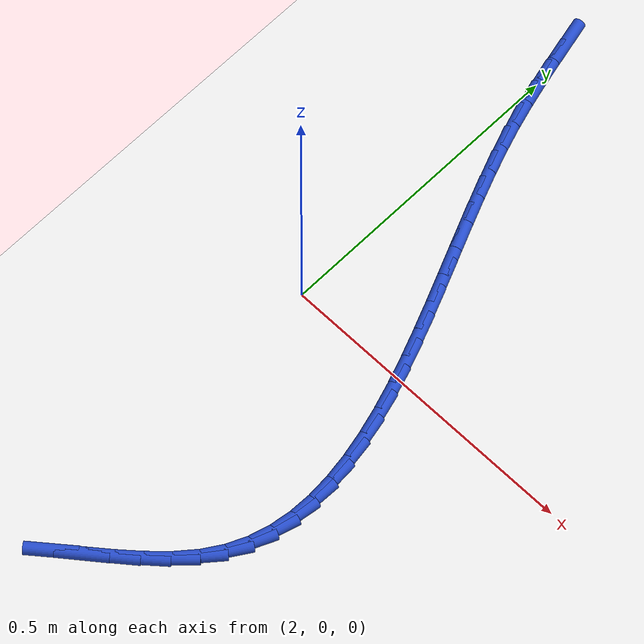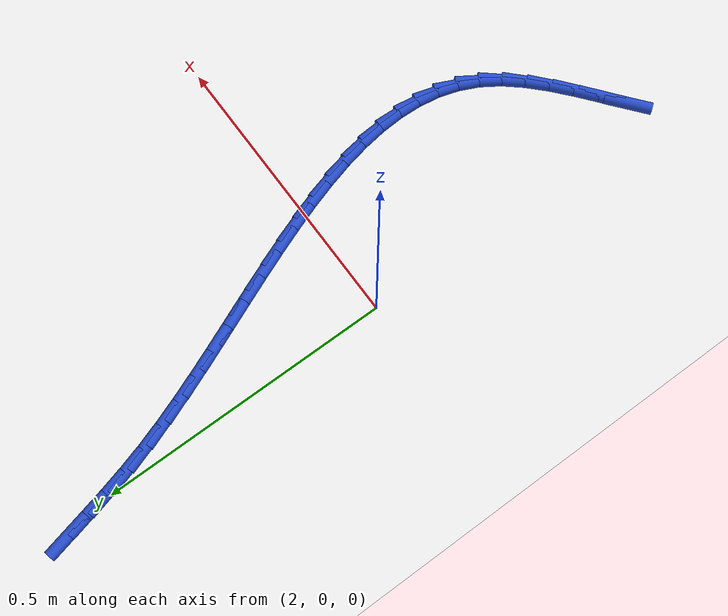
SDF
<sdf version="1.6">
 <world name="default">
  <model name="ground_plane">
   <static>1</static>
   <link name="link">
    <collision name="collision">
     <geometry><plane><normal>0 0 1</normal><size>100 100</size></plane></geometry>
     <surface><friction><ode><mu>100</mu><mu2>50</mu2></ode></friction></surface>
    </collision>
    <visual name="visual">
     <cast_shadows>0</cast_shadows>
     <geometry><plane><normal>0 0 1</normal><size>100 100</size></plane></geometry>
     <material>
      <script><uri>file://media/materials/scripts/gazebo.material</uri><name>Gazebo/WhiteGlow</name></script>
     </material>
    </visual>
   </link>
  </model>
  <model name="line">
   <link name="link_75">
    <pose>1.9848173739300197 0.5832726212072354 0.01 0 1.57 -1.339966599983334</pose>
    <collision name="collision">
     <geometry><cylinder><radius>0.01</radius><length>0.08</length></cylinder></geometry>
    </collision>
    <visual name="visual">
     <material>
      <script><name>Gazebo/Blue</name><uri>file://media/materials/scripts/gazebo.material</uri></script>
     </material>
     <geometry><cylinder><radius>0.01</radius><length>0.08</length></cylinder></geometry>
    </visual>
   </link>
   <link name="link_76">
    <pose>1.9943560275302878 0.5426858437855591 0.01 0 1.57 -1.330903270635454</pose>
    <collision name="collision">
     <geometry><cylinder><radius>0.01</radius><length>0.08</length></cylinder></geometry>
    </collision>
    <visual name="visual">
     <material>
      <script><name>Gazebo/Blue</name><uri>file://media/materials/scripts/gazebo.material</uri></script>
     </material>
     <geometry><cylinder><radius>0.01</radius><length>0.08</length></cylinder></geometry>
    </visual>
   </link>
   <link name="link_77">
    <pose>2.00435633278077 0.5018020825898984 0.01 0 1.57 -1.3100981899154562</pose>
    <collision name="collision">
     <geometry><cylinder><radius>0.01</radius><length>0.08</length></cylinder></geometry>
    </collision>
    <visual name="visual">
     <material>
      <script><name>Gazebo/Blue</name><uri>file://media/materials/scripts/gazebo.material</uri></script>
     </material>
     <geometry><cylinder><radius>0.01</radius><length>0.08</length></cylinder></geometry>
    </visual>
   </link>
   <link name="link_78">
    <pose>2.0153843852656297 0.46046278429122733 0.01 0 1.57 -1.2785554112859177</pose>
    <collision name="collision">
     <geometry><cylinder><radius>0.01</radius><length>0.08</length></cylinder></geometry>
    </collision>
    <visual name="visual">
     <material>
      <script><name>Gazebo/Blue</name><uri>file://media/materials/scripts/gazebo.material</uri></script>
     </material>
     <geometry><cylinder><radius>0.01</radius><length>0.08</length></cylinder></geometry>
    </visual>
   </link>
   <link name="link_79">
    <pose>2.028006266241324 0.41850939991579034 0.01 0 1.57 -1.241151438164576</pose>
    <collision name="collision">
     <geometry><cylinder><radius>0.01</radius><length>0.08</length></cylinder></geometry>
    </collision>
    <visual name="visual">
     <material>
      <script><name>Gazebo/Blue</name><uri>file://media/materials/scripts/gazebo.material</uri></script>
     </material>
     <geometry><cylinder><radius>0.01</radius><length>0.08</length></cylinder></geometry>
    </visual>
   </link>
   <link name="link_80">
    <pose>2.0426050024576887 0.3758390245719014 0.01 0 1.57 -1.2103614339069373</pose>
    <collision name="collision">
     <geometry><cylinder><radius>0.01</radius><length>0.08</length></cylinder></geometry>
    </collision>
    <visual name="visual">
     <material>
      <script><name>Gazebo/Blue</name><uri>file://media/materials/scripts/gazebo.material</uri></script>
     </material>
     <geometry><cylinder><radius>0.01</radius><length>0.08</length></cylinder></geometry>
    </visual>
   </link>
   <link name="link_81">
    <pose>2.058923075237174 0.3325434634735591 0.01 0 1.57 -1.1878251891187217</pose>
    <collision name="collision">
     <geometry><cylinder><radius>0.01</radius><length>0.08</length></cylinder></geometry>
    </collision>
    <visual name="visual">
     <material>
      <script><name>Gazebo/Blue</name><uri>file://media/materials/scripts/gazebo.material</uri></script>
     </material>
     <geometry><cylinder><radius>0.01</radius><length>0.08</length></cylinder></geometry>
    </visual>
   </link>
   <link name="link_82">
    <pose>2.076562940596465 0.2887570860947172 0.01 0 1.57 -1.172703800976146</pose>
    <collision name="collision">
     <geometry><cylinder><radius>0.01</radius><length>0.08</length></cylinder></geometry>
    </collision>
    <visual name="visual">
     <material>
      <script><name>Gazebo/Blue</name><uri>file://media/materials/scripts/gazebo.material</uri></script>
     </material>
     <geometry><cylinder><radius>0.01</radius><length>0.08</length></cylinder></geometry>
    </visual>
   </link>
   <link name="link_83">
    <pose>2.0951270545522473 0.24461426190932936 0.01 0 1.57 -1.1644336713721823</pose>
    <collision name="collision">
     <geometry><cylinder><radius>0.01</radius><length>0.08</length></cylinder></geometry>
    </collision>
    <visual name="visual">
     <material>
      <script><name>Gazebo/Blue</name><uri>file://media/materials/scripts/gazebo.material</uri></script>
     </material>
     <geometry><cylinder><radius>0.01</radius><length>0.08</length></cylinder></geometry>
    </visual>
   </link>
   <link name="link_84">
    <pose>2.1142178731212034 0.20024936039135036 0.01 0 1.57 -1.1626997362006306</pose>
    <collision name="collision">
     <geometry><cylinder><radius>0.01</radius><length>0.08</length></cylinder></geometry>
    </collision>
    <visual name="visual">
     <material>
      <script><name>Gazebo/Blue</name><uri>file://media/materials/scripts/gazebo.material</uri></script>
     </material>
     <geometry><cylinder><radius>0.01</radius><length>0.08</length></cylinder></geometry>
    </visual>
   </link>
   <link name="link_85">
    <pose>2.133437852320017 0.15579675101473334 0.01 0 1.57 -1.1674184849161204</pose>
    <collision name="collision">
     <geometry><cylinder><radius>0.01</radius><length>0.08</length></cylinder></geometry>
    </collision>
    <visual name="visual">
     <material>
      <script><name>Gazebo/Blue</name><uri>file://media/materials/scripts/gazebo.material</uri></script>
     </material>
     <geometry><cylinder><radius>0.01</radius><length>0.08</length></cylinder></geometry>
    </visual>
   </link>
   <link name="link_86">
    <pose>2.1523894481653736 0.11139080325343309 0.01 0 1.57 -1.1787322324730365</pose>
    <collision name="collision">
     <geometry><cylinder><radius>0.01</radius><length>0.08</length></cylinder></geometry>
    </collision>
    <visual name="visual">
     <material>
      <script><name>Gazebo/Blue</name><uri>file://media/materials/scripts/gazebo.material</uri></script>
     </material>
     <geometry><cylinder><radius>0.01</radius><length>0.08</length></cylinder></geometry>
    </visual>
   </link>
   <link name="link_87">
    <pose>2.1706751166739555 0.06716588658140331 0.01 0 1.57 -1.1970146524166554</pose>
    <collision name="collision">
     <geometry><cylinder><radius>0.01</radius><length>0.08</length></cylinder></geometry>
    </collision>
    <visual name="visual">
     <material>
      <script><name>Gazebo/Blue</name><uri>file://media/materials/scripts/gazebo.material</uri></script>
     </material>
     <geometry><cylinder><radius>0.01</radius><length>0.08</length></cylinder></geometry>
    </visual>
   </link>
   <link name="link_88">
    <pose>2.1878973138624476 0.02325637047259741 0.01 0 1.57 -1.2228864981685994</pose>
    <collision name="collision">
     <geometry><cylinder><radius>0.01</radius><length>0.08</length></cylinder></geometry>
    </collision>
    <visual name="visual">
     <material>
      <script><name>Gazebo/Blue</name><uri>file://media/materials/scripts/gazebo.material</uri></script>
     </material>
     <geometry><cylinder><radius>0.01</radius><length>0.08</length></cylinder></geometry>
    </visual>
   </link>
   <link name="link_89">
    <pose>2.2036584957475345 -0.020203375599029662 0.01 0 1.57 -1.2572385543227682</pose>
    <collision name="collision">
     <geometry><cylinder><radius>0.01</radius><length>0.08</length></cylinder></geometry>
    </collision>
    <visual name="visual">
     <material>
      <script><name>Gazebo/Blue</name><uri>file://media/materials/scripts/gazebo.material</uri></script>
     </material>
     <geometry><cylinder><radius>0.01</radius><length>0.08</length></cylinder></geometry>
    </visual>
   </link>
   <link name="link_90">
    <pose>2.2175611183458996 -0.06307898215952433 0.01 0 1.57 -1.3012546838040453</pose>
    <collision name="collision">
     <geometry><cylinder><radius>0.01</radius><length>0.08</length></cylinder></geometry>
    </collision>
    <visual name="visual">
     <material>
      <script><name>Gazebo/Blue</name><uri>file://media/materials/scripts/gazebo.material</uri></script>
     </material>
     <geometry><cylinder><radius>0.01</radius><length>0.08</length></cylinder></geometry>
    </visual>
   </link>
   <link name="link_91">
    <pose>2.229207637674227 -0.10523607973493261 0.01 0 1.57 -1.3564190860942613</pose>
    <collision name="collision">
     <geometry><cylinder><radius>0.01</radius><length>0.08</length></cylinder></geometry>
    </collision>
    <visual name="visual">
     <material>
      <script><name>Gazebo/Blue</name><uri>file://media/materials/scripts/gazebo.material</uri></script>
     </material>
     <geometry><cylinder><radius>0.01</radius><length>0.08</length></cylinder></geometry>
    </visual>
   </link>
   <link name="link_92">
    <pose>2.238200509749201 -0.14654029885130138 0.01 0 1.57 -1.4244753957020941</pose>
    <collision name="collision">
     <geometry><cylinder><radius>0.01</radius><length>0.08</length></cylinder></geometry>
    </collision>
    <visual name="visual">
     <material>
      <script><name>Gazebo/Blue</name><uri>file://media/materials/scripts/gazebo.material</uri></script>
     </material>
     <geometry><cylinder><radius>0.01</radius><length>0.08</length></cylinder></geometry>
    </visual>
   </link>
   <link name="link_93">
    <pose>2.244142190587505 -0.1868572700346748 0.01 0 1.57 -1.5072787947604473</pose>
    <collision name="collision">
     <geometry><cylinder><radius>0.01</radius><length>0.08</length></cylinder></geometry>
    </collision>
    <visual name="visual">
     <material>
      <script><name>Gazebo/Blue</name><uri>file://media/materials/scripts/gazebo.material</uri></script>
     </material>
     <geometry><cylinder><radius>0.01</radius><length>0.08</length></cylinder></geometry>
    </visual>
   </link>
   <link name="link_94">
    <pose>2.2466351362058234 -0.22605262381109997 0.01 0 1.57 1.535140486125496</pose>
    <collision name="collision">
     <geometry><cylinder><radius>0.01</radius><length>0.08</length></cylinder></geometry>
    </collision>
    <visual name="visual">
     <material>
      <script><name>Gazebo/Blue</name><uri>file://media/materials/scripts/gazebo.material</uri></script>
     </material>
     <geometry><cylinder><radius>0.01</radius><length>0.08</length></cylinder></geometry>
    </visual>
   </link>
   <link name="link_95">
    <pose>2.2452818026208403 -0.2639919907066227 0.01 0 1.57 1.4188357940700913</pose>
    <collision name="collision">
     <geometry><cylinder><radius>0.01</radius><length>0.08</length></cylinder></geometry>
    </collision>
    <visual name="visual">
     <material>
      <script><name>Gazebo/Blue</name><uri>file://media/materials/scripts/gazebo.material</uri></script>
     </material>
     <geometry><cylinder><radius>0.01</radius><length>0.08</length></cylinder></geometry>
    </visual>
   </link>
   <link name="link_96">
    <pose>2.2396846458492408 -0.3005410012472892 0.01 0 1.57 1.2863942920998297</pose>
    <collision name="collision">
     <geometry><cylinder><radius>0.01</radius><length>0.08</length></cylinder></geometry>
    </collision>
    <visual name="visual">
     <material>
      <script><name>Gazebo/Blue</name><uri>file://media/materials/scripts/gazebo.material</uri></script>
     </material>
     <geometry><cylinder><radius>0.01</radius><length>0.08</length></cylinder></geometry>
    </visual>
   </link>
   <link name="link_97">
    <pose>2.229446121907707 -0.33556528595914525 0.01 0 1.57 1.1414042326311238</pose>
    <collision name="collision">
     <geometry><cylinder><radius>0.01</radius><length>0.08</length></cylinder></geometry>
    </collision>
    <visual name="visual">
     <material>
      <script><name>Gazebo/Blue</name><uri>file://media/materials/scripts/gazebo.material</uri></script>
     </material>
     <geometry><cylinder><radius>0.01</radius><length>0.08</length></cylinder></geometry>
    </visual>
   </link>
   <link name="link_98">
    <pose>2.214168686812923 -0.36893047536823753 0.01 0 1.57 0.991500039893646</pose>
    <collision name="collision">
     <geometry><cylinder><radius>0.01</radius><length>0.08</length></cylinder></geometry>
    </collision>
    <visual name="visual">
     <material>
      <script><name>Gazebo/Blue</name><uri>file://media/materials/scripts/gazebo.material</uri></script>
     </material>
     <geometry><cylinder><radius>0.01</radius><length>0.08</length></cylinder></geometry>
    </visual>
   </link>
   <link name="link_99">
    <pose>2.1935036862165993 -0.40052045583059465 0.01 0 1.57 0.863694669815622</pose>
    <collision name="collision">
     <geometry><cylinder><radius>0.01</radius><length>0.08</length></cylinder></geometry>
    </collision>
    <visual name="visual">
     <material>
      <script><name>Gazebo/Blue</name><uri>file://media/materials/scripts/gazebo.material</uri></script>
     </material>
     <geometry><cylinder><radius>0.01</radius><length>0.08</length></cylinder></geometry>
    </visual>
   </link>
   <link name="link_100">
    <pose>2.16787851565575 -0.4305088977179779 0.01 0 1.57 0.772635964999906</pose>
    <collision name="collision">
     <geometry><cylinder><radius>0.01</radius><length>0.08</length></cylinder></geometry>
    </collision>
    <visual name="visual">
     <material>
      <script><name>Gazebo/Blue</name><uri>file://media/materials/scripts/gazebo.material</uri></script>
     </material>
     <geometry><cylinder><radius>0.01</radius><length>0.08</length></cylinder></geometry>
    </visual>
   </link>
   <link name="link_101">
    <pose>2.1383415944307296 -0.4593013672678806 0.01 0 1.57 0.7130921101261073</pose>
    <collision name="collision">
     <geometry><cylinder><radius>0.01</radius><length>0.08</length></cylinder></geometry>
    </collision>
    <visual name="visual">
     <material>
      <script><name>Gazebo/Blue</name><uri>file://media/materials/scripts/gazebo.material</uri></script>
     </material>
     <geometry><cylinder><radius>0.01</radius><length>0.08</length></cylinder></geometry>
    </visual>
   </link>
   <link name="link_102">
    <pose>2.1059587427765254 -0.48730992838348897 0.01 0 1.57 0.6801848975664101</pose>
    <collision name="collision">
     <geometry><cylinder><radius>0.01</radius><length>0.08</length></cylinder></geometry>
    </collision>
    <visual name="visual">
     <material>
      <script><name>Gazebo/Blue</name><uri>file://media/materials/scripts/gazebo.material</uri></script>
     </material>
     <geometry><cylinder><radius>0.01</radius><length>0.08</length></cylinder></geometry>
    </visual>
   </link>
   <link name="link_103">
    <pose>2.0717957809281278 -0.5149466449679901 0.01 0 1.57 0.6707972548521938</pose>
    <collision name="collision">
     <geometry><cylinder><radius>0.01</radius><length>0.08</length></cylinder></geometry>
    </collision>
    <visual name="visual">
     <material>
      <script><name>Gazebo/Blue</name><uri>file://media/materials/scripts/gazebo.material</uri></script>
     </material>
     <geometry><cylinder><radius>0.01</radius><length>0.08</length></cylinder></geometry>
    </visual>
   </link>
   <link name="link_104">
    <pose>2.0369185291205247 -0.5426235809245692 0.01 0 1.57 0.6836596968121232</pose>
    <collision name="collision">
     <geometry><cylinder><radius>0.01</radius><length>0.08</length></cylinder></geometry>
    </collision>
    <visual name="visual">
     <material>
      <script><name>Gazebo/Blue</name><uri>file://media/materials/scripts/gazebo.material</uri></script>
     </material>
     <geometry><cylinder><radius>0.01</radius><length>0.08</length></cylinder></geometry>
    </visual>
   </link>
  </model>
 </world>
</sdf>
